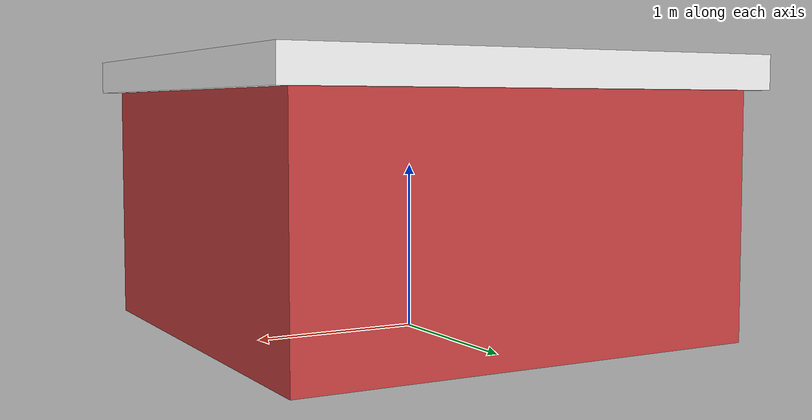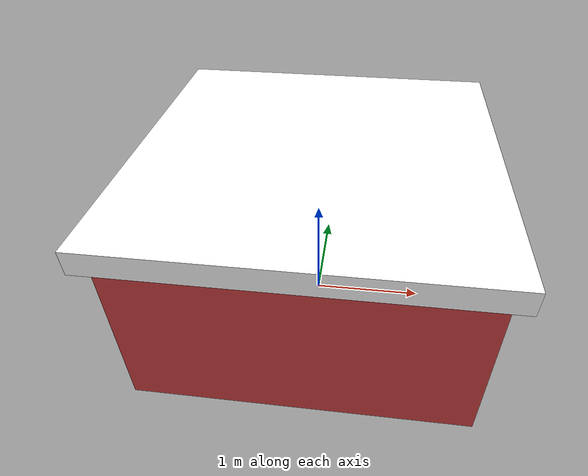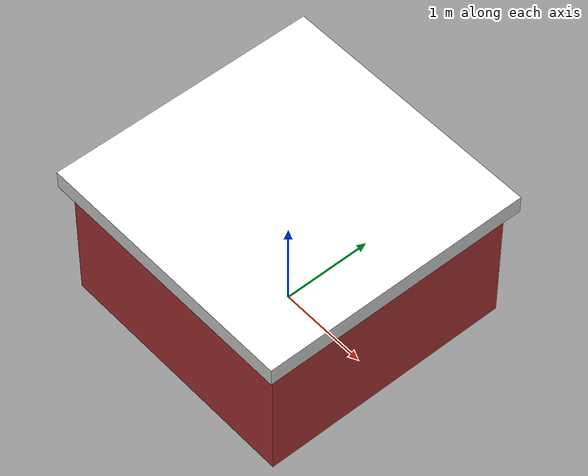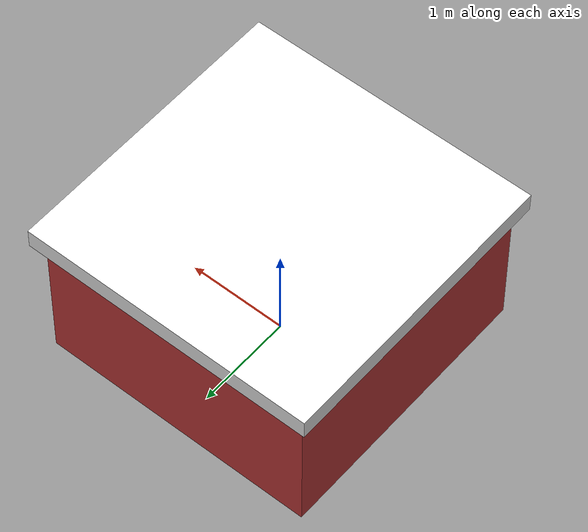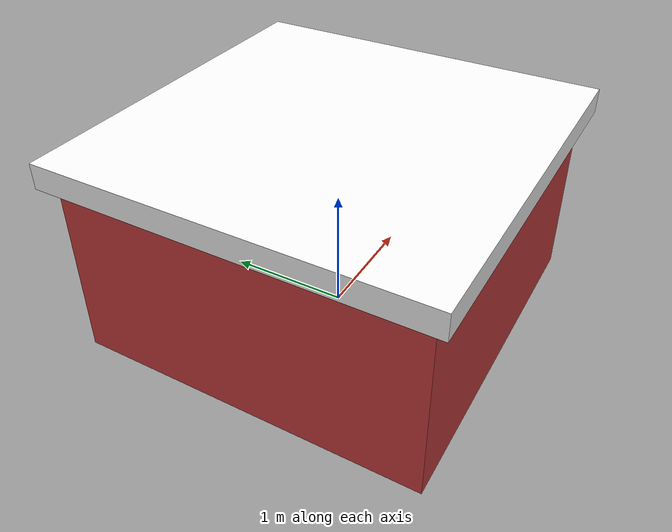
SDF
<?xml version="1.0"?>
<sdf version="1.6">
  <model name="house1">
    <static>true</static>
    <link name="house_link">
      <collision name="house_collision">
        <pose>0 0 0.75 0 0 0</pose>
        <geometry>
          <box>
            <size>2.8 2.8 1.5</size>
          </box>
        </geometry>
      </collision>

      <visual name="house_visual">
        <pose>0 0 0.75 0 0 0</pose>
        <geometry>
          <box>
            <size>2.8 2.8 1.5</size>
          </box>
        </geometry>
        <material>
          <ambient>0.80 0.25 0.25 1</ambient>
          <diffuse>0.80 0.25 0.25 1</diffuse>
          <specular>0.07 0.07 0.07 1</specular>
        </material>
      </visual>

      <visual name="roof_visual">
        <pose>0 0 1.55 0 0 0</pose>
        <geometry>
          <box>
            <size>3.0 3.0 0.20</size>
          </box>
        </geometry>
        <material>
          <ambient>0.92 0.92 0.92 1</ambient>
          <diffuse>0.98 0.98 0.98 1</diffuse>
          <specular>0.04 0.04 0.04 1</specular>
        </material>
      </visual>
    </link>
  </model>
</sdf>
